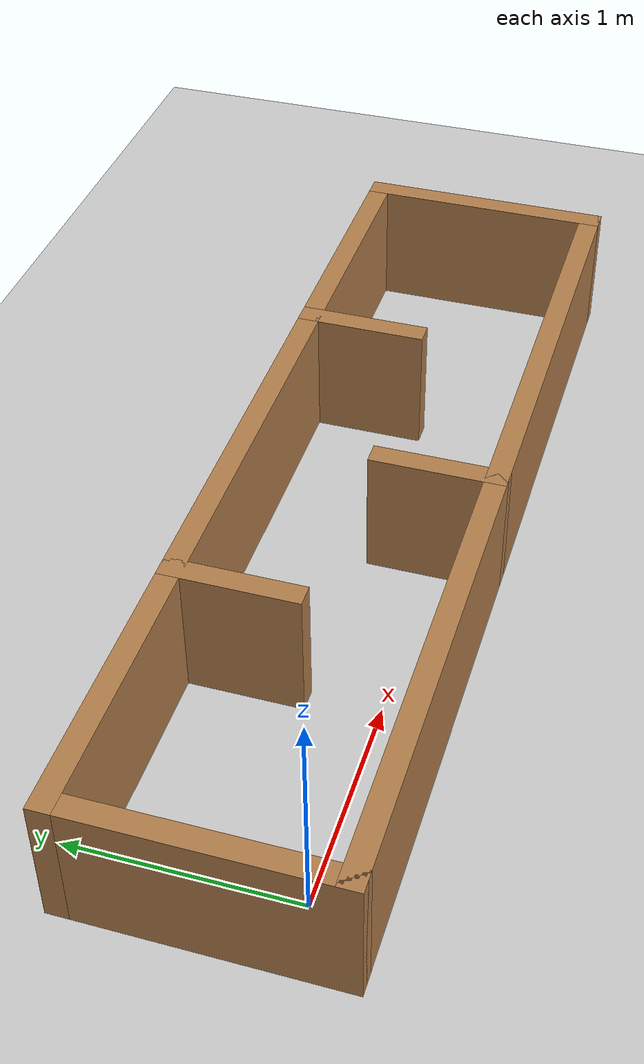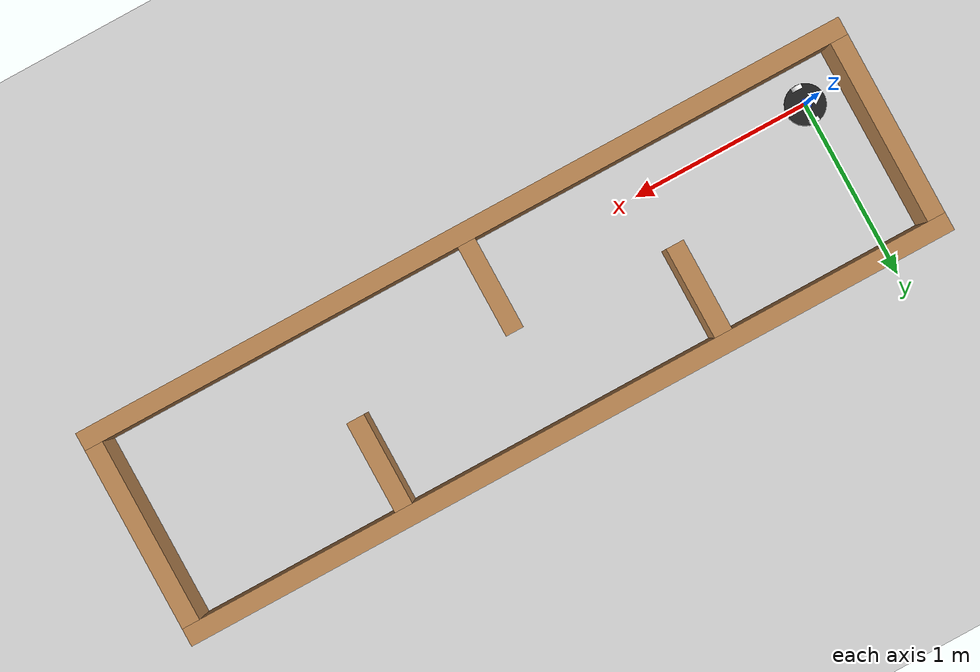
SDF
<sdf version="1.7">
 <world name="default">
  <light name="sun" type="directional">
   <pose>0 0 10 0 -0 0</pose>
   <diffuse>0.8 0.8 0.8 1</diffuse>
   <specular>0.2 0.2 0.2 1</specular>
   <attenuation>
    <range>1000</range>
    <constant>0.9</constant>
    <linear>0.01</linear>
    <quadratic>0.001</quadratic>
   </attenuation>
   <direction>-0.5 0.1 -0.9</direction>
   <spot><inner_angle>0</inner_angle><outer_angle>0</outer_angle><falloff>0</falloff></spot>
  </light>
  <model name="ground_plane">
   <static>1</static>
   <link name="link">
    <collision name="collision">
     <geometry><plane><normal>0 0 1</normal><size>100 100</size></plane></geometry>
     <surface><friction><ode><mu>100</mu><mu2>50</mu2></ode></friction></surface>
    </collision>
    <visual name="visual">
     <cast_shadows>0</cast_shadows>
     <geometry><plane><normal>0 0 1</normal><size>100 100</size></plane></geometry>
     <material>
      <script><uri>file://media/materials/scripts/gazebo.material</uri><name>Gazebo/Grey</name></script>
     </material>
    </visual>
   </link>
  </model>
  <gravity>0 0 -9.8</gravity>
  <magnetic_field>6e-06 2.3e-05 -4.2e-05</magnetic_field>
  <atmosphere type="adiabatic"/>
  <physics type="ode">
   <max_step_size>0.001</max_step_size>
   <real_time_factor>1</real_time_factor>
   <real_time_update_rate>1000</real_time_update_rate>
  </physics>
  <scene><ambient>0.4 0.4 0.4 1</ambient><background>0.7 0.7 0.7 1</background><shadows>1</shadows></scene>
  <audio><device>default</device></audio>
  <spherical_coordinates>
   <surface_model>EARTH_WGS84</surface_model>
   <latitude_deg>0</latitude_deg>
   <longitude_deg>0</longitude_deg>
   <elevation>0</elevation>
   <heading_deg>0</heading_deg>
  </spherical_coordinates>
  <model name="eced3901bot">
   <static>0</static>
   <pose>-0 0.001769 -2.5e-05 -3.7e-05 -0.003521 4e-05</pose>
   <link name="base_footprint">
    <inertial>
     <inertia><ixx>1</ixx><ixy>0</ixy><ixz>0</ixz><iyy>1</iyy><iyz>0</iyz><izz>1</izz></inertia>
     <mass>1</mass>
    </inertial>
   </link>
   <link name="base_link">
    <inertial>
     <pose>0 0 0.035 0 -0 0</pose>
     <inertia>
      <ixx>0.723974</ixx>
      <ixy>4.6864e-10</ixy>
      <ixz>-1.09526e-08</ixz>
      <iyy>0.723974</iyy>
      <iyz>2.85826e-09</iyz>
      <izz>0.65305</izz>
     </inertia>
     <mass>0.825735</mass>
    </inertial>
    <collision name="base_collision">
     <pose>0 0 0.2 0 -0 0</pose>
     <geometry><box><size>0.22 0.22 0.11</size></box></geometry>
    </collision>
    <visual name="base_visual">
     <pose>0 0 0.035 0 -0 0</pose>
     <geometry><cylinder><radius>0.11</radius><length>0.0364</length></cylinder></geometry>
     <material>
      <script><uri>file://media/materials/scripts/gazebo.material</uri><name>Gazebo/Black</name></script>
     </material>
    </visual>
    <visual name="base_pointfwd">
     <pose>0.09 0 0.053 0 -0 0</pose>
     <geometry><cylinder><radius>0.02</radius><length>0.001</length></cylinder></geometry>
     <material>
      <script><uri>file://media/materials/scripts/gazebo.material</uri><name>Gazebo/White</name></script>
     </material>
    </visual>
   </link>
   <link name="imu_link">
    <sensor name="bmb_imu" type="imu">
     <always_on>1</always_on>
     <update_rate>100</update_rate>
     <visualize>1</visualize>
     <imu>
      <angular_velocity>
       <x><noise type="gaussian"><mean>0</mean><stddev>0.0002</stddev></noise></x>
       <y><noise type="gaussian"><mean>0</mean><stddev>0.0002</stddev></noise></y>
       <z><noise type="gaussian"><mean>0</mean><stddev>0.0002</stddev></noise></z>
      </angular_velocity>
      <linear_acceleration>
       <x><noise type="gaussian"><mean>0</mean><stddev>0.017</stddev></noise></x>
       <y><noise type="gaussian"><mean>0</mean><stddev>0.017</stddev></noise></y>
       <z><noise type="gaussian"><mean>0</mean><stddev>0.017</stddev></noise></z>
      </linear_acceleration>
      <orientation>
       <x><noise type="gaussian"><mean>0.0</mean><stddev>2e-3</stddev></noise></x>
       <y><noise type="gaussian"><mean>0.0</mean><stddev>2e-3</stddev></noise></y>
       <z><noise type="gaussian"><mean>0.0</mean><stddev>2e-3</stddev></noise></z>
      </orientation>
     </imu>
     <plugin name="basic_mobile_bot_imu" filename="libgazebo_ros_imu_sensor.so">
      <initial_orientation_as_reference>0</initial_orientation_as_reference>
      <frame_name>imu_link</frame_name>
      <ros><namespace>/imu</namespace><remapping>~/out:=data</remapping></ros>
     </plugin>
    </sensor>
    <inertial>
     <inertia><ixx>1</ixx><ixy>0</ixy><ixz>0</ixz><iyy>1</iyy><iyz>0</iyz><izz>1</izz></inertia>
     <mass>1</mass>
    </inertial>
   </link>
   <link name="lidar_link">
    <inertial>
     <pose>0 0 0.0815 0 -0 0</pose>
     <inertia><ixx>0.001</ixx><ixy>0</ixy><ixz>0</ixz><iyy>0.001</iyy><iyz>0</iyz><izz>0.001</izz></inertia>
     <mass>0.114</mass>
    </inertial>
    <collision name="lidar_collision">
     <pose>0 0 0.0815 0 -0 0</pose>
     <geometry><cylinder><radius>0.03</radius><length>0.057</length></cylinder></geometry>
    </collision>
    <visual name="lidar_visual">
     <pose>0 0 0.0815 0 -0 0</pose>
     <geometry><cylinder><radius>0.03</radius><length>0.057</length></cylinder></geometry>
     <material>
      <script><uri>file://media/materials/scripts/gazebo.material</uri><name>Gazebo/Blue</name></script>
     </material>
    </visual>
    <sensor name="lidar" type="ray">
     <pose>0 0 0.11 0 -0 0</pose>
     <always_on>1</always_on>
     <visualize>1</visualize>
     <update_rate>5</update_rate>
     <ray>
      <scan>
       <horizontal>
        <samples>360</samples>
        <resolution>1</resolution>
        <min_angle>0</min_angle>
        <max_angle>6.28</max_angle>
       </horizontal>
       <vertical><samples>1</samples><min_angle>0</min_angle><max_angle>0</max_angle></vertical>
      </scan>
      <range><min>0.12</min><max>5</max><resolution>0.015</resolution></range>
      <noise><type>gaussian</type><mean>0</mean><stddev>0.01</stddev></noise>
     </ray>
     <plugin name="scan" filename="libgazebo_ros_ray_sensor.so">
      <ros><remapping>~/out:=scan</remapping></ros>
      <output_type>sensor_msgs/LaserScan</output_type>
      <frame_name>lidar_link</frame_name>
     </plugin>
    </sensor>
   </link>
   <link name="drivewhl_l_link">
    <pose>0 0.095 0.035 3.14159 1.57079 -1.57079</pose>
    <inertial>
     <inertia>
      <ixx>0.00181582</ixx>
      <ixy>-9.3392e-12</ixy>
      <ixz>1.04909e-11</ixz>
      <iyy>0.00329221</iyy>
      <iyz>5.75694e-11</iyz>
      <izz>0.00181582</izz>
     </inertia>
     <mass>0.0284989</mass>
    </inertial>
    <collision name="drivewhl_l_collision">
     <geometry><cylinder><radius>0.035</radius><length>0.023</length></cylinder></geometry>
    </collision>
    <visual name="drivewhl_l_visual">
     <geometry><cylinder><radius>0.035</radius><length>0.023</length></cylinder></geometry>
     <material>
      <script><uri>file://media/materials/scripts/gazebo.material</uri><name>Gazebo/White</name></script>
     </material>
    </visual>
   </link>
   <link name="drivewhl_r_link">
    <pose>0 -0.095 0.035 3.14159 1.57079 -1.57079</pose>
    <inertial>
     <inertia>
      <ixx>0.00181582</ixx>
      <ixy>-9.3392e-12</ixy>
      <ixz>1.04909e-11</ixz>
      <iyy>0.00329221</iyy>
      <iyz>5.75694e-11</iyz>
      <izz>0.00181582</izz>
     </inertia>
     <mass>0.0284989</mass>
    </inertial>
    <collision name="drivewhl_r_collision">
     <geometry><cylinder><radius>0.035</radius><length>0.023</length></cylinder></geometry>
    </collision>
    <visual name="drivewhl_r_visual">
     <geometry><cylinder><radius>0.035</radius><length>0.023</length></cylinder></geometry>
     <material>
      <script><uri>file://media/materials/scripts/gazebo.material</uri><name>Gazebo/White</name></script>
     </material>
    </visual>
   </link>
   <link name="front_caster">
    <pose>0.09 0 0.012 0 -0 0</pose>
    <inertial>
     <inertia><ixx>0.001</ixx><ixy>0</ixy><ixz>0</ixz><iyy>0.001</iyy><iyz>0</iyz><izz>0.001</izz></inertia>
     <mass>0.005</mass>
    </inertial>
    <collision name="collision">
     <geometry><sphere><radius>0.012</radius></sphere></geometry>
     <surface>
      <friction><ode><mu>0.01</mu><mu2>0.01</mu2><slip1>1</slip1><slip2>1</slip2></ode></friction>
     </surface>
    </collision>
    <visual name="front_caster_visual">
     <geometry><sphere><radius>0.012</radius></sphere></geometry>
     <material>
      <script><uri>file://media/materials/scripts/gazebo.material</uri><name>Gazebo/White</name></script>
     </material>
    </visual>
   </link>
   <link name="back_caster">
    <pose>-0.09 0 0.015 0 -0 0</pose>
    <inertial>
     <inertia><ixx>0.001</ixx><ixy>0</ixy><ixz>0</ixz><iyy>0.001</iyy><iyz>0</iyz><izz>0.001</izz></inertia>
     <mass>0.005</mass>
    </inertial>
    <collision name="collision">
     <geometry><sphere><radius>0.012</radius></sphere></geometry>
     <surface>
      <friction><ode><mu>0.01</mu><mu2>0.01</mu2><slip1>1</slip1><slip2>1</slip2></ode></friction>
     </surface>
    </collision>
    <visual name="back_caster_visual">
     <geometry><sphere><radius>0.012</radius></sphere></geometry>
     <material>
      <script><uri>file://media/materials/scripts/gazebo.material</uri><name>Gazebo/White</name></script>
     </material>
    </visual>
   </link>
   <joint name="base_joint" type="fixed"><parent>base_footprint</parent><child>base_link</child></joint>
   <joint name="drivewhl_l_joint" type="revolute">
    <parent>base_link</parent>
    <child>drivewhl_l_link</child>
    <axis>
     <xyz>0 0 1</xyz>
     <limit><lower>-1e+16</lower><upper>1e+16</upper></limit>
     <dynamics><spring_reference>0</spring_reference><spring_stiffness>0</spring_stiffness></dynamics>
    </axis>
   </joint>
   <joint name="drivewhl_r_joint" type="revolute">
    <parent>base_link</parent>
    <child>drivewhl_r_link</child>
    <axis>
     <xyz>0 0 1</xyz>
     <limit><lower>-1e+16</lower><upper>1e+16</upper></limit>
     <dynamics><spring_reference>0</spring_reference><spring_stiffness>0</spring_stiffness></dynamics>
    </axis>
   </joint>
   <joint name="caster_joint_front" type="ball"><parent>base_link</parent><child>front_caster</child></joint>
   <joint name="caster_joint_back" type="ball"><parent>base_link</parent><child>back_caster</child></joint>
   <joint name="imu_joint" type="fixed"><parent>base_link</parent><child>imu_link</child></joint>
   <joint name="lidar_joint" type="fixed"><parent>base_link</parent><child>lidar_link</child></joint>
   <plugin name="basic_mobile_bot_diff_drive" filename="libgazebo_ros_diff_drive.so">
    <update_rate>30</update_rate>
    <left_joint>drivewhl_l_joint</left_joint>
    <right_joint>drivewhl_r_joint</right_joint>
    <wheel_separation>0.19</wheel_separation>
    <wheel_diameter>0.07</wheel_diameter>
    <max_wheel_torque>20</max_wheel_torque>
    <max_wheel_acceleration>1.0</max_wheel_acceleration>
    <command_topic>cmd_vel</command_topic>
    <publish_odom>1</publish_odom>
    <publish_odom_tf>1</publish_odom_tf>
    <publish_wheel_tf>0</publish_wheel_tf>
    <odometry_topic>odom</odometry_topic>
    <odometry_frame>odom</odometry_frame>
    <robot_base_frame>base_footprint</robot_base_frame>
    <odometry_source>0</odometry_source>
    <ros><remapping>odom:=wheel/odometry</remapping></ros>
   </plugin>
   <plugin name="basic_mobile_bot_joint_state" filename="libgazebo_ros_joint_state_publisher.so">
    <ros><remapping>~/out:=joint_states</remapping></ros>
    <update_rate>30</update_rate>
    <joint_name>drivewhl_l_joint</joint_name>
    <joint_name>drivewhl_r_joint</joint_name>
   </plugin>
  </model>
  <model name="Challenge_1">
   <link name="Wall_22">
    <pose>0 0.56 0 0 -0 0</pose>
    <visual name="Wall_22_Visual">
     <pose>0 0 0.305 0 -0 0</pose>
     <geometry><box><size>4.37 0.1 0.61</size></box></geometry>
     <material>
      <script><uri>file://media/materials/scripts/gazebo.material</uri><name>Gazebo/Wood</name></script>
      <ambient>1 1 1 1</ambient>
      <shader type="pixel"/>
     </material>
     <meta><layer>0</layer></meta>
    </visual>
    <collision name="Wall_22_Collision">
     <pose>0 0 0.305 0 -0 0</pose>
     <geometry><box><size>4.37 0.1 0.61</size></box></geometry>
     <surface>
      <friction>
       <ode><mu>1</mu><mu2>1</mu2><fdir1>0 0 0</fdir1><slip1>0</slip1><slip2>0</slip2></ode>
       <torsional>
        <coefficient>1</coefficient>
        <patch_radius>0</patch_radius>
        <surface_radius>0</surface_radius>
        <use_patch_radius>1</use_patch_radius>
        <ode><slip>0</slip></ode>
       </torsional>
      </friction>
      <bounce><restitution_coefficient>0</restitution_coefficient><threshold>1e+06</threshold></bounce>
      <contact>
       <collide_without_contact>0</collide_without_contact>
       <collide_without_contact_bitmask>1</collide_without_contact_bitmask>
       <collide_bitmask>1</collide_bitmask>
       <ode>
        <soft_cfm>0</soft_cfm>
        <soft_erp>0.2</soft_erp>
        <kp>1e+13</kp>
        <kd>1</kd>
        <max_vel>0.01</max_vel>
        <min_depth>0</min_depth>
       </ode>
       <bullet>
        <split_impulse>1</split_impulse>
        <split_impulse_penetration_threshold>-0.01</split_impulse_penetration_threshold>
        <soft_cfm>0</soft_cfm>
        <soft_erp>0.2</soft_erp>
        <kp>1e+13</kp>
        <kd>1</kd>
       </bullet>
      </contact>
     </surface>
    </collision>
   </link>
   <link name="Wall_24">
    <pose>-0 -0.56 0 0 -0 0</pose>
    <visual name="Wall_24_Visual">
     <pose>0 0 0.305 0 -0 0</pose>
     <geometry><box><size>4.37 0.1 0.61</size></box></geometry>
     <material>
      <script><uri>file://media/materials/scripts/gazebo.material</uri><name>Gazebo/Wood</name></script>
      <ambient>1 1 1 1</ambient>
      <shader type="pixel"/>
     </material>
     <meta><layer>0</layer></meta>
    </visual>
    <collision name="Wall_24_Collision">
     <pose>0 0 0.305 0 -0 0</pose>
     <geometry><box><size>4.37 0.1 0.61</size></box></geometry>
     <surface>
      <friction>
       <ode><mu>1</mu><mu2>1</mu2><fdir1>0 0 0</fdir1><slip1>0</slip1><slip2>0</slip2></ode>
       <torsional>
        <coefficient>1</coefficient>
        <patch_radius>0</patch_radius>
        <surface_radius>0</surface_radius>
        <use_patch_radius>1</use_patch_radius>
        <ode><slip>0</slip></ode>
       </torsional>
      </friction>
      <bounce><restitution_coefficient>0</restitution_coefficient><threshold>1e+06</threshold></bounce>
      <contact>
       <collide_without_contact>0</collide_without_contact>
       <collide_without_contact_bitmask>1</collide_without_contact_bitmask>
       <collide_bitmask>1</collide_bitmask>
       <ode>
        <soft_cfm>0</soft_cfm>
        <soft_erp>0.2</soft_erp>
        <kp>1e+13</kp>
        <kd>1</kd>
        <max_vel>0.01</max_vel>
        <min_depth>0</min_depth>
       </ode>
       <bullet>
        <split_impulse>1</split_impulse>
        <split_impulse_penetration_threshold>-0.01</split_impulse_penetration_threshold>
        <soft_cfm>0</soft_cfm>
        <soft_erp>0.2</soft_erp>
        <kp>1e+13</kp>
        <kd>1</kd>
       </bullet>
      </contact>
     </surface>
    </collision>
   </link>
   <link name="Wall_26">
    <pose>-2.135 -0 0 0 0 -1.5708</pose>
    <visual name="Wall_26_Visual">
     <pose>0 0 0.305 0 -0 0</pose>
     <geometry><box><size>1.22 0.1 0.61</size></box></geometry>
     <material>
      <script><uri>file://media/materials/scripts/gazebo.material</uri><name>Gazebo/Wood</name></script>
      <ambient>1 1 1 1</ambient>
      <shader type="pixel"/>
     </material>
     <meta><layer>0</layer></meta>
    </visual>
    <collision name="Wall_26_Collision">
     <pose>0 0 0.305 0 -0 0</pose>
     <geometry><box><size>1.22 0.1 0.61</size></box></geometry>
     <surface>
      <friction>
       <ode><mu>1</mu><mu2>1</mu2><fdir1>0 0 0</fdir1><slip1>0</slip1><slip2>0</slip2></ode>
       <torsional>
        <coefficient>1</coefficient>
        <patch_radius>0</patch_radius>
        <surface_radius>0</surface_radius>
        <use_patch_radius>1</use_patch_radius>
        <ode><slip>0</slip></ode>
       </torsional>
      </friction>
      <bounce><restitution_coefficient>0</restitution_coefficient><threshold>1e+06</threshold></bounce>
      <contact>
       <collide_without_contact>0</collide_without_contact>
       <collide_without_contact_bitmask>1</collide_without_contact_bitmask>
       <collide_bitmask>1</collide_bitmask>
       <ode>
        <soft_cfm>0</soft_cfm>
        <soft_erp>0.2</soft_erp>
        <kp>1e+13</kp>
        <kd>1</kd>
        <max_vel>0.01</max_vel>
        <min_depth>0</min_depth>
       </ode>
       <bullet>
        <split_impulse>1</split_impulse>
        <split_impulse_penetration_threshold>-0.01</split_impulse_penetration_threshold>
        <soft_cfm>0</soft_cfm>
        <soft_erp>0.2</soft_erp>
        <kp>1e+13</kp>
        <kd>1</kd>
       </bullet>
      </contact>
     </surface>
    </collision>
   </link>
   <link name="Wall_28">
    <pose>2.135 0 0 0 0 -1.5708</pose>
    <visual name="Wall_28_Visual">
     <pose>0 0 0.305 0 -0 0</pose>
     <geometry><box><size>1.22 0.1 0.61</size></box></geometry>
     <material>
      <script><uri>file://media/materials/scripts/gazebo.material</uri><name>Gazebo/Wood</name></script>
      <ambient>1 1 1 1</ambient>
      <shader type="pixel"/>
     </material>
     <meta><layer>0</layer></meta>
    </visual>
    <collision name="Wall_28_Collision">
     <pose>0 0 0.305 0 -0 0</pose>
     <geometry><box><size>1.22 0.1 0.61</size></box></geometry>
     <surface>
      <friction>
       <ode><mu>1</mu><mu2>1</mu2><fdir1>0 0 0</fdir1><slip1>0</slip1><slip2>0</slip2></ode>
       <torsional>
        <coefficient>1</coefficient>
        <patch_radius>0</patch_radius>
        <surface_radius>0</surface_radius>
        <use_patch_radius>1</use_patch_radius>
        <ode><slip>0</slip></ode>
       </torsional>
      </friction>
      <bounce><restitution_coefficient>0</restitution_coefficient><threshold>1e+06</threshold></bounce>
      <contact>
       <collide_without_contact>0</collide_without_contact>
       <collide_without_contact_bitmask>1</collide_without_contact_bitmask>
       <collide_bitmask>1</collide_bitmask>
       <ode>
        <soft_cfm>0</soft_cfm>
        <soft_erp>0.2</soft_erp>
        <kp>1e+13</kp>
        <kd>1</kd>
        <max_vel>0.01</max_vel>
        <min_depth>0</min_depth>
       </ode>
       <bullet>
        <split_impulse>1</split_impulse>
        <split_impulse_penetration_threshold>-0.01</split_impulse_penetration_threshold>
        <soft_cfm>0</soft_cfm>
        <soft_erp>0.2</soft_erp>
        <kp>1e+13</kp>
        <kd>1</kd>
       </bullet>
      </contact>
     </surface>
    </collision>
   </link>
   <link name="Wall_30">
    <pose>-0.916 -0.305 0 0 -0 1.5708</pose>
    <visual name="Wall_30_Visual">
     <pose>0 0 0.305 0 -0 0</pose>
     <geometry><box><size>0.61 0.1 0.61</size></box></geometry>
     <material>
      <script><uri>file://media/materials/scripts/gazebo.material</uri><name>Gazebo/Wood</name></script>
      <ambient>1 1 1 1</ambient>
      <shader type="pixel"/>
     </material>
     <meta><layer>0</layer></meta>
    </visual>
    <collision name="Wall_30_Collision">
     <pose>0 0 0.305 0 -0 0</pose>
     <geometry><box><size>0.61 0.1 0.61</size></box></geometry>
     <surface>
      <friction>
       <ode><mu>1</mu><mu2>1</mu2><fdir1>0 0 0</fdir1><slip1>0</slip1><slip2>0</slip2></ode>
       <torsional>
        <coefficient>1</coefficient>
        <patch_radius>0</patch_radius>
        <surface_radius>0</surface_radius>
        <use_patch_radius>1</use_patch_radius>
        <ode><slip>0</slip></ode>
       </torsional>
      </friction>
      <bounce><restitution_coefficient>0</restitution_coefficient><threshold>1e+06</threshold></bounce>
      <contact>
       <collide_without_contact>0</collide_without_contact>
       <collide_without_contact_bitmask>1</collide_without_contact_bitmask>
       <collide_bitmask>1</collide_bitmask>
       <ode>
        <soft_cfm>0</soft_cfm>
        <soft_erp>0.2</soft_erp>
        <kp>1e+13</kp>
        <kd>1</kd>
        <max_vel>0.01</max_vel>
        <min_depth>0</min_depth>
       </ode>
       <bullet>
        <split_impulse>1</split_impulse>
        <split_impulse_penetration_threshold>-0.01</split_impulse_penetration_threshold>
        <soft_cfm>0</soft_cfm>
        <soft_erp>0.2</soft_erp>
        <kp>1e+13</kp>
        <kd>1</kd>
       </bullet>
      </contact>
     </surface>
    </collision>
   </link>
   <link name="Wall_33">
    <pose>-0.001 0.305 0 0 0 -1.5708</pose>
    <visual name="Wall_33_Visual">
     <pose>0 0 0.305 0 -0 0</pose>
     <geometry><box><size>0.61 0.1 0.61</size></box></geometry>
     <material>
      <script><uri>file://media/materials/scripts/gazebo.material</uri><name>Gazebo/Wood</name></script>
      <ambient>1 1 1 1</ambient>
      <shader type="pixel"/>
     </material>
     <meta><layer>0</layer></meta>
    </visual>
    <collision name="Wall_33_Collision">
     <pose>0 0 0.305 0 -0 0</pose>
     <geometry><box><size>0.61 0.1 0.61</size></box></geometry>
     <surface>
      <friction>
       <ode><mu>1</mu><mu2>1</mu2><fdir1>0 0 0</fdir1><slip1>0</slip1><slip2>0</slip2></ode>
       <torsional>
        <coefficient>1</coefficient>
        <patch_radius>0</patch_radius>
        <surface_radius>0</surface_radius>
        <use_patch_radius>1</use_patch_radius>
        <ode><slip>0</slip></ode>
       </torsional>
      </friction>
      <bounce><restitution_coefficient>0</restitution_coefficient><threshold>1e+06</threshold></bounce>
      <contact>
       <collide_without_contact>0</collide_without_contact>
       <collide_without_contact_bitmask>1</collide_without_contact_bitmask>
       <collide_bitmask>1</collide_bitmask>
       <ode>
        <soft_cfm>0</soft_cfm>
        <soft_erp>0.2</soft_erp>
        <kp>1e+13</kp>
        <kd>1</kd>
        <max_vel>0.01</max_vel>
        <min_depth>0</min_depth>
       </ode>
       <bullet>
        <split_impulse>1</split_impulse>
        <split_impulse_penetration_threshold>-0.01</split_impulse_penetration_threshold>
        <soft_cfm>0</soft_cfm>
        <soft_erp>0.2</soft_erp>
        <kp>1e+13</kp>
        <kd>1</kd>
       </bullet>
      </contact>
     </surface>
    </collision>
   </link>
   <link name="Wall_35">
    <pose>0.915 -0.305 0 0 -0 1.5708</pose>
    <visual name="Wall_35_Visual">
     <pose>0 0 0.305 0 -0 0</pose>
     <geometry><box><size>0.61 0.1 0.61</size></box></geometry>
     <material>
      <script><uri>file://media/materials/scripts/gazebo.material</uri><name>Gazebo/Wood</name></script>
      <ambient>1 1 1 1</ambient>
      <shader type="pixel"/>
     </material>
     <meta><layer>0</layer></meta>
    </visual>
    <collision name="Wall_35_Collision">
     <pose>0 0 0.305 0 -0 0</pose>
     <geometry><box><size>0.61 0.1 0.61</size></box></geometry>
     <surface>
      <friction>
       <ode><mu>1</mu><mu2>1</mu2><fdir1>0 0 0</fdir1><slip1>0</slip1><slip2>0</slip2></ode>
       <torsional>
        <coefficient>1</coefficient>
        <patch_radius>0</patch_radius>
        <surface_radius>0</surface_radius>
        <use_patch_radius>1</use_patch_radius>
        <ode><slip>0</slip></ode>
       </torsional>
      </friction>
      <bounce><restitution_coefficient>0</restitution_coefficient><threshold>1e+06</threshold></bounce>
      <contact>
       <collide_without_contact>0</collide_without_contact>
       <collide_without_contact_bitmask>1</collide_without_contact_bitmask>
       <collide_bitmask>1</collide_bitmask>
       <ode>
        <soft_cfm>0</soft_cfm>
        <soft_erp>0.2</soft_erp>
        <kp>1e+13</kp>
        <kd>1</kd>
        <max_vel>0.01</max_vel>
        <min_depth>0</min_depth>
       </ode>
       <bullet>
        <split_impulse>1</split_impulse>
        <split_impulse_penetration_threshold>-0.01</split_impulse_penetration_threshold>
        <soft_cfm>0</soft_cfm>
        <soft_erp>0.2</soft_erp>
        <kp>1e+13</kp>
        <kd>1</kd>
       </bullet>
      </contact>
     </surface>
    </collision>
   </link>
   <static>1</static>
   <pose>1.88088 0.31 0 0 -0 3.14</pose>
  </model>
 </world>
</sdf>
